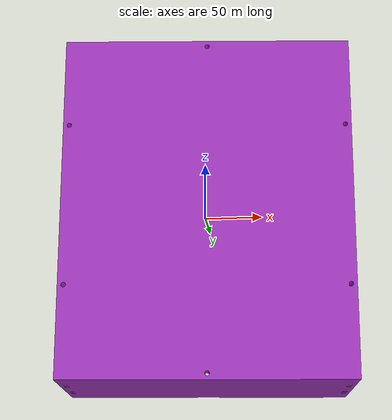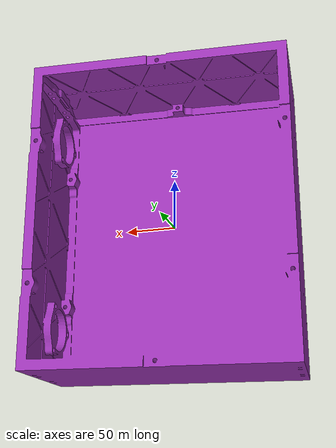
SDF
<?xml version="1.0"?>
<sdf version='1.7'>
  <model name='onshape'>
    <link name="base_footprint"/>
    <joint name="base_link_joint" type="fixed">
      <origin xyz="0 0 0"/>
      <parent link="base_footprint"/>
      <child link="chassis"/>
    </joint>
    <link name='chassis'>
      <inertial>
        <pose>4e-05 0.013225 0.053516 0 -0 0</pose>
        <mass>5.94686</mass>
        <inertia>
          <ixx>0.193912</ixx>
          <ixy>1.49562e-05</ixy>
          <ixz>-2.00414e-05</ixz>
          <iyy>0.168234</iyy>
          <iyz>0.00967508</iyz>
          <izz>0.303882</izz>
        </inertia>
      </inertial>
      <collision name='chassis_collision'>
        <pose>-0.037188 -0.081251 -0.001711 -8e-06 -0 0.077134</pose>
        <geometry>
          <mesh>
            <scale>1 1 1</scale>
            <uri>model://rover/meshes/chassis.stl</uri>
          </mesh>
        </geometry>
        <surface>
          <contact>
            <ode>
              <kp>1e+27</kp>
              <kd>1e+27</kd>
            </ode>
          </contact>
          <friction>
            <ode>
              <mu>1000</mu>
              <mu2>100</mu2>
            </ode>
          </friction>
        </surface>
      </collision>
      <visual name='chassis_visual'>
        <pose>-0.037188 -0.081251 -0.001711 -8e-06 -0 0.077134</pose>
        <geometry>
          <mesh>
            <scale>1 1 1</scale>
            <uri>model://rover/meshes/chassis.stl</uri>
          </mesh>
        </geometry>
        <material>
          <script>
            <name>Gazebo/Purple</name>
            <uri>file://media/materials/scripts/gazebo.material</uri>
          </script>
        </material>
      </visual>
    </link>
    <joint name='LeftBackSupport' type='revolute'>
      <pose relative_to='chassis'>0.143043 0.273482 -0.048145 3.14138 0.039016 1.57079</pose>
      <parent>chassis</parent>
      <child>support_moteur_4</child>
      <axis>
        <xyz>0 0 1</xyz>
        <limit>
          <effort>1</effort>
          <velocity>20</velocity>
          <lower>-1e+16</lower>
          <upper>1e+16</upper>
        </limit>
        <dynamics>
          <spring_reference>0</spring_reference>
          <spring_stiffness>0</spring_stiffness>
        </dynamics>
      </axis>
    </joint>
    <link name='support_moteur_4'>
      <pose relative_to='LeftBackSupport'>0 0 0 0 -0 0</pose>
      <inertial>
        <pose>-0 -0.03572 0.033314 0 -0 0</pose>
        <mass>0.126103</mass>
        <inertia>
          <ixx>0.000322677</ixx>
          <ixy>-5.2642e-11</ixy>
          <ixz>5.23725e-11</ixz>
          <iyy>0.000220883</iyy>
          <iyz>6.86618e-05</iyz>
          <izz>0.000125526</izz>
        </inertia>
      </inertial>
      <collision name='support_moteur_4_collision'>
        <pose>0.035612 0.002561 0.067284 3.14159 -0 0</pose>
        <geometry>
          <mesh>
            <scale>1 1 1</scale>
            <uri>model://rover/meshes/support_moteur.stl</uri>
          </mesh>
        </geometry>
        <surface>
          <contact>
            <ode>
              <kp>1e+27</kp>
              <kd>1e+27</kd>
            </ode>
          </contact>
          <friction>
            <ode>
              <mu>1000</mu>
              <mu2>100</mu2>
            </ode>
          </friction>
        </surface>
      </collision>
      <visual name='support_moteur_4_visual'>
        <pose>0.035612 0.002561 0.067284 3.14159 -0 0</pose>
        <geometry>
          <mesh>
            <scale>1 1 1</scale>
            <uri>model://rover/meshes/support_moteur.stl</uri>
          </mesh>
        </geometry>
        <material>
          <script>
            <name>Gazebo/Orange</name>
            <uri>file://media/materials/scripts/gazebo.material</uri>
          </script>
        </material>
      </visual>
    </link>
    <joint name='LeftBack_wheel' type='revolute'>
      <pose relative_to='support_moteur_4'>0 -0.01 0.07 1.5708 -0.477788 -0</pose>
      <parent>support_moteur_4</parent>
      <child>roue_6</child>
      <axis>
        <xyz>0 0 1</xyz>
        <limit>
          <effort>1</effort>
          <velocity>20</velocity>
          <lower>-1e+16</lower>
          <upper>1e+16</upper>
        </limit>
        <dynamics>
          <spring_reference>0</spring_reference>
          <spring_stiffness>0</spring_stiffness>
        </dynamics>
      </axis>
    </joint>
    <link name='roue_6'>
      <pose relative_to='LeftBack_wheel'>0 0 0 0 -0 0</pose>
      <inertial>
        <pose>-2.9e-05 8e-06 -0.008578 0 -0 0</pose>
        <mass>0.259961</mass>
        <inertia>
          <ixx>0.000429024</ixx>
          <ixy>2.667e-11</ixy>
          <ixz>2.7122e-08</ixz>
          <iyy>0.000429024</iyy>
          <iyz>-7.25467e-09</iyz>
          <izz>0.000659618</izz>
        </inertia>
      </inertial>
      <collision name='roue_6_collision'>
        <pose>0.067096 0.017987 0.081823 1.5708 0 -0</pose>
        <geometry>
          <mesh>
            <scale>1 1 1</scale>
            <uri>model://rover/meshes/roue.stl</uri>
          </mesh>
        </geometry>
        <surface>
          <contact>
            <ode>
              <kp>1e+27</kp>
              <kd>1e+27</kd>
            </ode>
          </contact>
          <friction>
            <ode>
              <mu>1000</mu>
              <mu2>100</mu2>
            </ode>
          </friction>
        </surface>
      </collision>
      <visual name='roue_6_visual'>
        <pose>0.067096 0.017987 0.081823 1.5708 0 -0</pose>
        <geometry>
          <mesh>
            <scale>1 1 1</scale>
            <uri>model://rover/meshes/roue.stl</uri>
          </mesh>
        </geometry>
        <material>
          <script>
            <name>Gazebo/Green</name>
            <uri>file://media/materials/scripts/gazebo.material</uri>
          </script>
        </material>
      </visual>
    </link>
    <joint name='LeftFrontSupport' type='revolute'>
      <pose relative_to='chassis'>0.194042 -0.263414 -0.044774 3.14138 0.002809 1.5708</pose>
      <parent>chassis</parent>
      <child>support_moteur_3</child>
      <axis>
        <xyz>0 0 1</xyz>
        <limit>
          <effort>1</effort>
          <velocity>20</velocity>
          <lower>-1e+16</lower>
          <upper>1e+16</upper>
        </limit>
        <dynamics>
          <spring_reference>0</spring_reference>
          <spring_stiffness>0</spring_stiffness>
        </dynamics>
      </axis>
    </joint>
    <link name='support_moteur_3'>
      <pose relative_to='LeftFrontSupport'>0 0 0 0 -0 0</pose>
      <inertial>
        <pose>-0 -0.03572 0.033314 0 -0 0</pose>
        <mass>0.126103</mass>
        <inertia>
          <ixx>0.000322677</ixx>
          <ixy>-5.2642e-11</ixy>
          <ixz>5.23725e-11</ixz>
          <iyy>0.000220883</iyy>
          <iyz>6.86618e-05</iyz>
          <izz>0.000125526</izz>
        </inertia>
      </inertial>
      <collision name='support_moteur_3_collision'>
        <pose>0.035612 0.002561 0.067284 3.14159 -0 0</pose>
        <geometry>
          <mesh>
            <scale>1 1 1</scale>
            <uri>model://rover/meshes/support_moteur.stl</uri>
          </mesh>
        </geometry>
        <surface>
          <contact>
            <ode>
              <kp>1e+27</kp>
              <kd>1e+27</kd>
            </ode>
          </contact>
          <friction>
            <ode>
              <mu>1000</mu>
              <mu2>100</mu2>
            </ode>
          </friction>
        </surface>
      </collision>
      <visual name='support_moteur_3_visual'>
        <pose>0.035612 0.002561 0.067284 3.14159 -0 0</pose>
        <geometry>
          <mesh>
            <scale>1 1 1</scale>
            <uri>model://rover/meshes/support_moteur.stl</uri>
          </mesh>
        </geometry>
        <material>
          <script>
            <name>Gazebo/Orange</name>
            <uri>file://media/materials/scripts/gazebo.material</uri>
          </script>
        </material>
      </visual>
    </link>
    <joint name='LeftFront_wheel' type='revolute'>
      <pose relative_to='support_moteur_3'>0 -0.01 0.07 -1.5708 0.407431 -3.14159</pose>
      <parent>support_moteur_3</parent>
      <child>roue_4</child>
      <axis>
        <xyz>0 0 1</xyz>
        <limit>
          <effort>1</effort>
          <velocity>20</velocity>
          <lower>-1e+16</lower>
          <upper>1e+16</upper>
        </limit>
        <dynamics>
          <spring_reference>0</spring_reference>
          <spring_stiffness>0</spring_stiffness>
        </dynamics>
      </axis>
    </joint>
    <link name='roue_4'>
      <pose relative_to='LeftFront_wheel'>0 0 0 0 -0 0</pose>
      <inertial>
        <pose>-2.9e-05 8e-06 -0.008578 0 -0 0</pose>
        <mass>0.259961</mass>
        <inertia>
          <ixx>0.000429024</ixx>
          <ixy>2.667e-11</ixy>
          <ixz>2.7122e-08</ixz>
          <iyy>0.000429024</iyy>
          <iyz>-7.25467e-09</iyz>
          <izz>0.000659618</izz>
        </inertia>
      </inertial>
      <collision name='roue_4_collision'>
        <pose>0.067096 0.017987 0.081823 1.5708 -0 0</pose>
        <geometry>
          <mesh>
            <scale>1 1 1</scale>
            <uri>model://rover/meshes/roue.stl</uri>
          </mesh>
        </geometry>
        <surface>
          <contact>
            <ode>
              <kp>1e+27</kp>
              <kd>1e+27</kd>
            </ode>
          </contact>
          <friction>
            <ode>
              <mu>1000</mu>
              <mu2>100</mu2>
            </ode>
          </friction>
        </surface>
      </collision>
      <visual name='roue_4_visual'>
        <pose>0.067096 0.017987 0.081823 1.5708 -0 0</pose>
        <geometry>
          <mesh>
            <scale>1 1 1</scale>
            <uri>model://rover/meshes/roue.stl</uri>
          </mesh>
        </geometry>
        <material>
          <script>
            <name>Gazebo/Green</name>
            <uri>file://media/materials/scripts/gazebo.material</uri>
          </script>
        </material>
      </visual>
    </link>
    <joint name='LeftMid_wheel' type='revolute'>
      <pose relative_to='chassis'>0.254058 0.01066 -0.115328 -1.57101 0.00279 1.5708</pose>
      <parent>chassis</parent>
      <child>roue_5</child>
      <axis>
        <xyz>0 0 1</xyz>
        <limit>
          <effort>1</effort>
          <velocity>20</velocity>
          <lower>-1e+16</lower>
          <upper>1e+16</upper>
        </limit>
        <dynamics>
          <spring_reference>0</spring_reference>
          <spring_stiffness>0</spring_stiffness>
        </dynamics>
      </axis>
    </joint>
    <link name='roue_5'>
      <pose relative_to='LeftMid_wheel'>0 0 0 0 -0 0</pose>
      <inertial>
        <pose>-2.9e-05 8e-06 -0.008578 0 -0 0</pose>
        <mass>0.259961</mass>
        <inertia>
          <ixx>0.000429024</ixx>
          <ixy>2.667e-11</ixy>
          <ixz>2.7122e-08</ixz>
          <iyy>0.000429024</iyy>
          <iyz>-7.25467e-09</iyz>
          <izz>0.000659618</izz>
        </inertia>
      </inertial>
      <collision name='roue_5_collision'>
        <pose>0.067096 0.017987 0.081823 1.5708 -0 0</pose>
        <geometry>
          <mesh>
            <scale>1 1 1</scale>
            <uri>model://rover/meshes/roue.stl</uri>
          </mesh>
        </geometry>
        <surface>
          <contact>
            <ode>
              <kp>1e+27</kp>
              <kd>1e+27</kd>
            </ode>
          </contact>
          <friction>
            <ode>
              <mu>1000</mu>
              <mu2>100</mu2>
            </ode>
          </friction>
        </surface>
      </collision>
      <visual name='roue_5_visual'>
        <pose>0.067096 0.017987 0.081823 1.5708 -0 0</pose>
        <geometry>
          <mesh>
            <scale>1 1 1</scale>
            <uri>model://rover/meshes/roue.stl</uri>
          </mesh>
        </geometry>
        <material>
          <script>
            <name>Gazebo/Green</name>
            <uri>file://media/materials/scripts/gazebo.material</uri>
          </script>
        </material>
      </visual>
    </link>
    <joint name='RightBackSupport' type='revolute'>
      <pose relative_to='chassis'>-0.142957 0.27378 -0.047774 -3.14138 -0.035605 -1.5708</pose>
      <parent>chassis</parent>
      <child>support_moteur</child>
      <axis>
        <xyz>0 0 1</xyz>
        <limit>
          <effort>1</effort>
          <velocity>20</velocity>
          <lower>-1e+16</lower>
          <upper>1e+16</upper>
        </limit>
        <dynamics>
          <spring_reference>0</spring_reference>
          <spring_stiffness>0</spring_stiffness>
        </dynamics>
      </axis>
    </joint>
    <link name='support_moteur'>
      <pose relative_to='RightBackSupport'>0 0 0 0 -0 0</pose>
      <inertial>
        <pose>-0 -0.03572 0.033314 0 -0 0</pose>
        <mass>0.126103</mass>
        <inertia>
          <ixx>0.000322677</ixx>
          <ixy>-5.2642e-11</ixy>
          <ixz>5.23725e-11</ixz>
          <iyy>0.000220883</iyy>
          <iyz>6.86618e-05</iyz>
          <izz>0.000125526</izz>
        </inertia>
      </inertial>
      <collision name='support_moteur_collision'>
        <pose>0.035612 0.002561 0.067284 3.14159 -0 -0</pose>
        <geometry>
          <mesh>
            <scale>1 1 1</scale>
            <uri>model://rover/meshes/support_moteur.stl</uri>
          </mesh>
        </geometry>
        <surface>
          <contact>
            <ode>
              <kp>1e+27</kp>
              <kd>1e+27</kd>
            </ode>
          </contact>
          <friction>
            <ode>
              <mu>1000</mu>
              <mu2>100</mu2>
            </ode>
          </friction>
        </surface>
      </collision>
      <visual name='support_moteur_visual'>
        <pose>0.035612 0.002561 0.067284 3.14159 -0 -0</pose>
        <geometry>
          <mesh>
            <scale>1 1 1</scale>
            <uri>model://rover/meshes/support_moteur.stl</uri>
          </mesh>
        </geometry>
        <material>
          <script>
            <name>Gazebo/Orange</name>
            <uri>file://media/materials/scripts/gazebo.material</uri>
          </script>
        </material>
      </visual>
    </link>
    <joint name='RightBack_wheel' type='revolute'>
      <pose relative_to='support_moteur'>-0 -0.01 0.07 -1.5708 1.57077 3.14159</pose>
      <parent>support_moteur</parent>
      <child>roue</child>
      <axis>
        <xyz>0 0 1</xyz>
        <limit>
          <effort>1</effort>
          <velocity>20</velocity>
          <lower>-1e+16</lower>
          <upper>1e+16</upper>
        </limit>
        <dynamics>
          <spring_reference>0</spring_reference>
          <spring_stiffness>0</spring_stiffness>
        </dynamics>
      </axis>
    </joint>
    <link name='roue'>
      <pose relative_to='RightBack_wheel'>0 0 0 0 -0 0</pose>
      <inertial>
        <pose>-2.9e-05 8e-06 -0.008578 0 -0 0</pose>
        <mass>0.259961</mass>
        <inertia>
          <ixx>0.000429024</ixx>
          <ixy>2.667e-11</ixy>
          <ixz>2.7122e-08</ixz>
          <iyy>0.000429024</iyy>
          <iyz>-7.25467e-09</iyz>
          <izz>0.000659618</izz>
        </inertia>
      </inertial>
      <collision name='roue_collision'>
        <pose>0.067096 0.017987 0.081823 1.5708 -0 0</pose>
        <geometry>
          <mesh>
            <scale>1 1 1</scale>
            <uri>model://rover/meshes/roue.stl</uri>
          </mesh>
        </geometry>
        <surface>
          <contact>
            <ode>
              <kp>1e+27</kp>
              <kd>1e+27</kd>
            </ode>
          </contact>
          <friction>
            <ode>
              <mu>1000</mu>
              <mu2>100</mu2>
            </ode>
          </friction>
        </surface>
      </collision>
      <visual name='roue_visual'>
        <pose>0.067096 0.017987 0.081823 1.5708 -0 0</pose>
        <geometry>
          <mesh>
            <scale>1 1 1</scale>
            <uri>model://rover/meshes/roue.stl</uri>
          </mesh>
        </geometry>
        <material>
          <script>
            <name>Gazebo/Green</name>
            <uri>file://media/materials/scripts/gazebo.material</uri>
          </script>
        </material>
      </visual>
    </link>
    <joint name='RightFrontSupport' type='revolute'>
      <pose relative_to='chassis'>-0.193958 -0.263409 -0.044858 -3.14138 -0.002809 -1.5708</pose>
      <parent>chassis</parent>
      <child>support_moteur_2</child>
      <axis>
        <xyz>0 0 1</xyz>
        <limit>
          <effort>1</effort>
          <velocity>20</velocity>
          <lower>-1e+16</lower>
          <upper>1e+16</upper>
        </limit>
        <dynamics>
          <spring_reference>0</spring_reference>
          <spring_stiffness>0</spring_stiffness>
        </dynamics>
      </axis>
    </joint>
    <link name='support_moteur_2'>
      <pose relative_to='RightFrontSupport'>0 0 0 0 -0 0</pose>
      <inertial>
        <pose>-0 -0.03572 0.033314 0 -0 0</pose>
        <mass>0.126103</mass>
        <inertia>
          <ixx>0.000322677</ixx>
          <ixy>-5.2642e-11</ixy>
          <ixz>5.23725e-11</ixz>
          <iyy>0.000220883</iyy>
          <iyz>6.86618e-05</iyz>
          <izz>0.000125526</izz>
        </inertia>
      </inertial>
      <collision name='support_moteur_2_collision'>
        <pose>0.035612 0.002561 0.067284 3.14159 0 0</pose>
        <geometry>
          <mesh>
            <scale>1 1 1</scale>
            <uri>model://rover/meshes/support_moteur.stl</uri>
          </mesh>
        </geometry>
        <surface>
          <contact>
            <ode>
              <kp>1e+27</kp>
              <kd>1e+27</kd>
            </ode>
          </contact>
          <friction>
            <ode>
              <mu>1000</mu>
              <mu2>100</mu2>
            </ode>
          </friction>
        </surface>
      </collision>
      <visual name='support_moteur_2_visual'>
        <pose>0.035612 0.002561 0.067284 3.14159 0 0</pose>
        <geometry>
          <mesh>
            <scale>1 1 1</scale>
            <uri>model://rover/meshes/support_moteur.stl</uri>
          </mesh>
        </geometry>
        <material>
          <script>
            <name>Gazebo/Orange</name>
            <uri>file://media/materials/scripts/gazebo.material</uri>
          </script>
        </material>
      </visual>
    </link>
    <joint name='RightFront_wheel' type='revolute'>
      <pose relative_to='support_moteur_2'>0 -0.01 0.07 1.5708 0.397415 -0</pose>
      <parent>support_moteur_2</parent>
      <child>roue_3</child>
      <axis>
        <xyz>0 0 1</xyz>
        <limit>
          <effort>1</effort>
          <velocity>20</velocity>
          <lower>-1e+16</lower>
          <upper>1e+16</upper>
        </limit>
        <dynamics>
          <spring_reference>0</spring_reference>
          <spring_stiffness>0</spring_stiffness>
        </dynamics>
      </axis>
    </joint>
    <link name='roue_3'>
      <pose relative_to='RightFront_wheel'>0 0 0 0 -0 0</pose>
      <inertial>
        <pose>-2.9e-05 8e-06 -0.008578 0 -0 0</pose>
        <mass>0.259961</mass>
        <inertia>
          <ixx>0.000429024</ixx>
          <ixy>2.667e-11</ixy>
          <ixz>2.7122e-08</ixz>
          <iyy>0.000429024</iyy>
          <iyz>-7.25467e-09</iyz>
          <izz>0.000659618</izz>
        </inertia>
      </inertial>
      <collision name='roue_3_collision'>
        <pose>0.067096 0.017987 0.081823 1.5708 0 0</pose>
        <geometry>
          <mesh>
            <scale>1 1 1</scale>
            <uri>model://rover/meshes/roue.stl</uri>
          </mesh>
        </geometry>
        <surface>
          <contact>
            <ode>
              <kp>1e+27</kp>
              <kd>1e+27</kd>
            </ode>
          </contact>
          <friction>
            <ode>
              <mu>1000</mu>
              <mu2>100</mu2>
            </ode>
          </friction>
        </surface>
      </collision>
      <visual name='roue_3_visual'>
        <pose>0.067096 0.017987 0.081823 1.5708 0 0</pose>
        <geometry>
          <mesh>
            <scale>1 1 1</scale>
            <uri>model://rover/meshes/roue.stl</uri>
          </mesh>
        </geometry>
        <material>
          <script>
            <name>Gazebo/Green</name>
            <uri>file://media/materials/scripts/gazebo.material</uri>
          </script>
        </material>
      </visual>
    </link>
    <joint name='RightMid_wheel' type='revolute'>
      <pose relative_to='chassis'>-0.253942 0.011189 -0.115902 1.57058 0.00279 1.5708</pose>
      <parent>chassis</parent>
      <child>roue_2</child>
      <axis>
        <xyz>0 0 1</xyz>
        <limit>
          <effort>1</effort>
          <velocity>20</velocity>
          <lower>-1e+16</lower>
          <upper>1e+16</upper>
        </limit>
        <dynamics>
          <spring_reference>0</spring_reference>
          <spring_stiffness>0</spring_stiffness>
        </dynamics>
      </axis>
    </joint>
    <link name='roue_2'>
      <pose relative_to='RightMid_wheel'>0 0 0 0 -0 0</pose>
      <inertial>
        <pose>-2.9e-05 8e-06 -0.008578 0 -0 0</pose>
        <mass>0.259961</mass>
        <inertia>
          <ixx>0.000429024</ixx>
          <ixy>2.667e-11</ixy>
          <ixz>2.7122e-08</ixz>
          <iyy>0.000429024</iyy>
          <iyz>-7.25467e-09</iyz>
          <izz>0.000659618</izz>
        </inertia>
      </inertial>
      <collision name='roue_2_collision'>
        <pose>0.067096 0.017987 0.081823 1.5708 -0 -0</pose>
        <geometry>
          <mesh>
            <scale>1 1 1</scale>
            <uri>model://rover/meshes/roue.stl</uri>
          </mesh>
        </geometry>
        <surface>
          <contact>
            <ode>
              <kp>1e+27</kp>
              <kd>1e+27</kd>
            </ode>
          </contact>
          <friction>
            <ode>
              <mu>1000</mu>
              <mu2>100</mu2>
            </ode>
          </friction>
        </surface>
      </collision>
      <visual name='roue_2_visual'>
        <pose>0.067096 0.017987 0.081823 1.5708 -0 -0</pose>
        <geometry>
          <mesh>
            <scale>1 1 1</scale>
            <uri>model://rover/meshes/roue.stl</uri>
          </mesh>
        </geometry>
        <material>
          <script>
            <name>Gazebo/Green</name>
            <uri>file://media/materials/scripts/gazebo.material</uri>
          </script>
        </material>
      </visual>
    </link>

    <static>0</static>

    <plugin name="four_ws_robot_joint_state" filename="libgazebo_ros_joint_state_publisher.so">
      <ros>
          <remapping>~/out:=joint_states</remapping>
      </ros>
      <update_rate>30</update_rate>
      <joint_name>LeftFront_wheel</joint_name>
      <joint_name>RightFront_wheel</joint_name>
      <joint_name>LeftMid_wheel</joint_name>
      <joint_name>RightMid_wheel</joint_name>
      <joint_name>LeftBack_wheel</joint_name>
      <joint_name>RightBack_wheel</joint_name>
      <joint_name>LeftFrontSupport</joint_name>
      <joint_name>RightFrontSupport</joint_name>
      <joint_name>LeftBackSupport</joint_name>
      <joint_name>RightBackSupport</joint_name>
    </plugin>

<ros2_control name="GazeboSystem" type="system">
    <hardware>
      <plugin>gazebo_ros2_control/GazeboSystem</plugin>
    </hardware>

    <joint name="LeftFront_wheel">
      <command_interface name="velocity">
        <param name="min">-3.14</param>
        <param name="max">3.14</param>
      </command_interface>
      <state_interface name="velocity"/>
      <state_interface name="effort"/>
    </joint>

    <joint name="RightFront_wheel">
      <command_interface name="velocity">
        <param name="min">-3.14</param>
        <param name="max">3.14</param>
      </command_interface>
      <state_interface name="velocity"/>
      <state_interface name="effort"/>
    </joint>

    <joint name="LeftMid_wheel">
      <command_interface name="velocity">
        <param name="min">-3.14</param>
        <param name="max">3.14</param>
      </command_interface>
      <state_interface name="velocity"/>
      <state_interface name="effort"/>
    </joint>

    <joint name="RightMid_wheel">
      <command_interface name="velocity">
        <param name="min">-3.14</param>
        <param name="max">3.14</param>
      </command_interface>
      <state_interface name="velocity"/>
      <state_interface name="effort"/>
    </joint>

    <joint name="LeftBack_wheel">
      <command_interface name="velocity">
        <param name="min">-3.14</param>
        <param name="max">3.14</param>
      </command_interface>
      <state_interface name="velocity"/>
      <state_interface name="effort"/>
    </joint>

    <joint name="RightBack_wheel">
      <command_interface name="velocity">
        <param name="min">-3.14</param>
        <param name="max">3.14</param>
      </command_interface>
      <state_interface name="velocity"/>
      <state_interface name="effort"/>
    </joint>

    <joint name="LeftFrontSupport">
      <command_interface name="position">
        <param name="min">-1.0471975512</param>
        <param name="max">1.0471975512</param>
      </command_interface>
      <state_interface name="position">
        <param name="initial_value">0</param>
      </state_interface>
      <state_interface name="velocity"/>
      <state_interface name="effort"/>
    </joint>

    <joint name="RightFrontSupport">
      <command_interface name="position">
        <param name="min">-1.0471975512</param>
        <param name="max">1.0471975512</param>
      </command_interface>
      <state_interface name="position">
        <param name="initial_value">0</param>
      </state_interface>
      <state_interface name="velocity"/>
      <state_interface name="effort"/>
    </joint>

    <joint name="LeftBackSupport">
      <command_interface name="position">
        <param name="min">-1.0471975512</param>
        <param name="max">1.0471975512</param>
      </command_interface>
      <state_interface name="position">
        <param name="initial_value">0</param>
      </state_interface>
      <state_interface name="velocity"/>
      <state_interface name="effort"/>
    </joint>

    <joint name="RightBackSupport">
      <command_interface name="position">
        <param name="min">-1.0471975512</param>
        <param name="max">1.0471975512</param>
      </command_interface>
      <state_interface name="position">
        <param name="initial_value">0</param>
      </state_interface>
      <state_interface name="velocity"/>
      <state_interface name="effort"/>
    </joint>
  </ros2_control>

    <plugin name="gazebo_ros2_control" filename="libgazebo_ros2_control.so">
      <parameters>/home/darrow/Desktop/four_ws_ros2/install/rover/share/rover/models/config/controllers.yaml</parameters>
    </plugin>

  </model>
</sdf>
